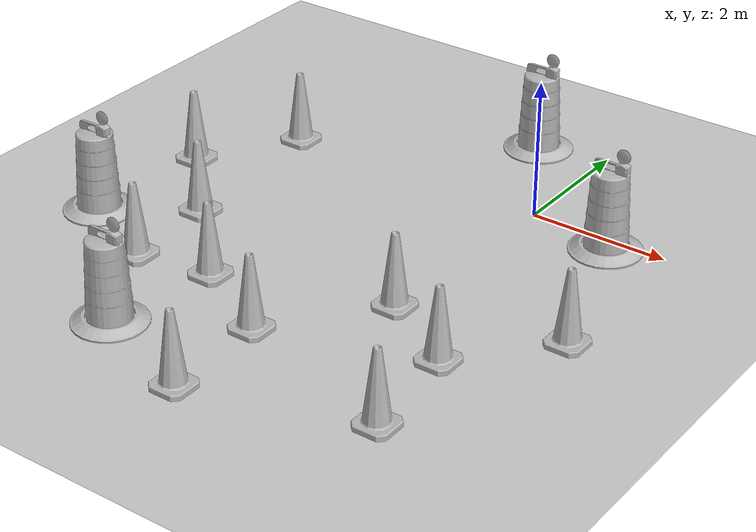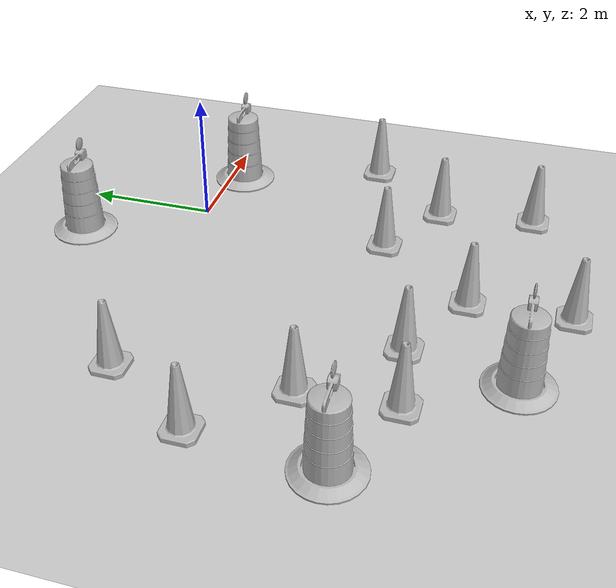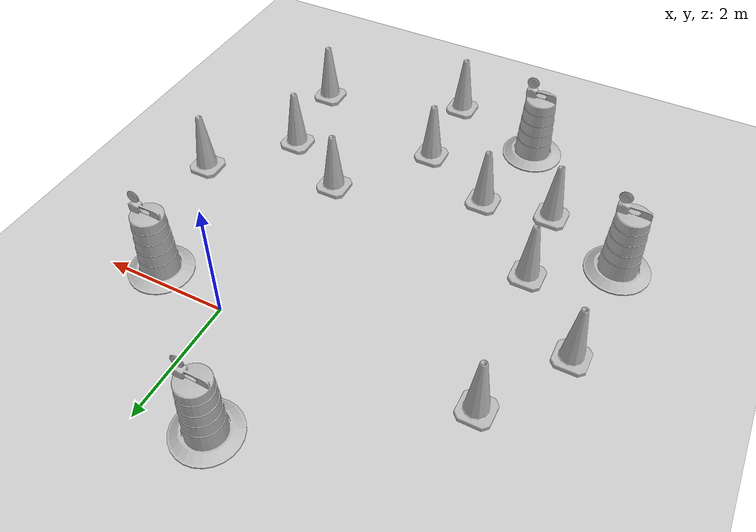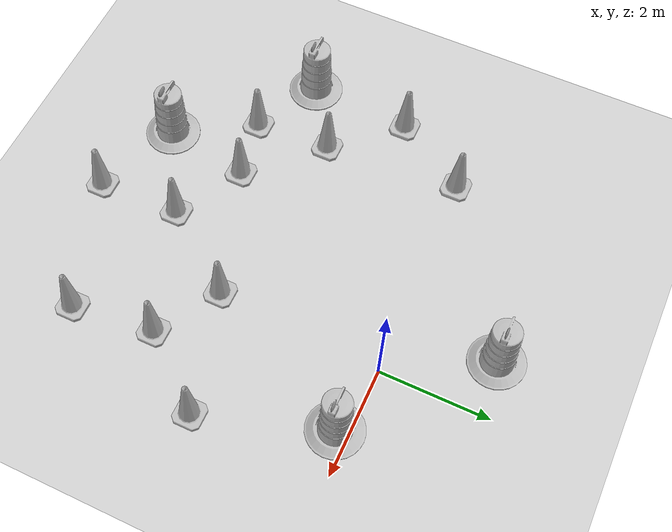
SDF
<sdf version="1.7">
 <world name="default">
  <light name="sun" type="directional">
   <pose>0 0 10 0 -0 0</pose>
   <diffuse>0.8 0.8 0.8 1</diffuse>
   <specular>0.2 0.2 0.2 1</specular>
   <attenuation>
    <range>1000</range>
    <constant>0.9</constant>
    <linear>0.01</linear>
    <quadratic>0.001</quadratic>
   </attenuation>
   <direction>-0.5 0.1 -0.9</direction>
   <spot><inner_angle>0</inner_angle><outer_angle>0</outer_angle><falloff>0</falloff></spot>
  </light>
  <model name="ground_plane">
   <static>1</static>
   <link name="link">
    <collision name="collision">
     <geometry><plane><normal>0 0 1</normal><size>100 100</size></plane></geometry>
     <surface><friction><ode><mu>100</mu><mu2>50</mu2></ode></friction></surface>
    </collision>
    <visual name="visual">
     <cast_shadows>0</cast_shadows>
     <geometry><plane><normal>0 0 1</normal><size>100 100</size></plane></geometry>
     <material>
      <script><uri>file://media/materials/scripts/gazebo.material</uri><name>Gazebo/Grey</name></script>
     </material>
    </visual>
   </link>
  </model>
  <gravity>0 0 -9.8</gravity>
  <magnetic_field>6e-06 2.3e-05 -4.2e-05</magnetic_field>
  <atmosphere type="adiabatic"/>
  <physics type="ode">
   <max_step_size>0.001</max_step_size>
   <real_time_factor>1</real_time_factor>
   <real_time_update_rate>1000</real_time_update_rate>
  </physics>
  <scene><ambient>0.4 0.4 0.4 1</ambient><background>0.7 0.7 0.7 1</background><shadows>1</shadows></scene>
  <audio><device>default</device></audio>
  <spherical_coordinates>
   <surface_model>EARTH_WGS84</surface_model>
   <latitude_deg>0</latitude_deg>
   <longitude_deg>0</longitude_deg>
   <elevation>0</elevation>
   <heading_deg>0</heading_deg>
  </spherical_coordinates>
  <model name="Construction Barrel_clone_9">
   <link name="link">
    <inertial>
     <pose>0 0 0.4 0 -0 0</pose>
     <mass>500</mass>
     <inertia><ixx>51.2096</ixx><iyy>51.2096</iyy><izz>25</izz><ixy>0</ixy><ixz>0</ixz><iyz>0</iyz></inertia>
    </inertial>
    <collision name="collision">
     <geometry><mesh><uri>model://construction_barrel/meshes/construction_barrel.dae</uri></mesh></geometry>
    </collision>
    <visual name="visual">
     <geometry><mesh><uri>model://construction_barrel/meshes/construction_barrel.dae</uri></mesh></geometry>
    </visual>
   </link>
   <pose>-1.00523 1.72622 -1e-06 3e-06 -0 -4.2e-05</pose>
  </model>
  <model name="Construction Cone">
   <link name="link">
    <collision name="collision">
     <geometry>
      <mesh><scale>10 10 10</scale><uri>model://construction_cone/meshes/construction_cone.dae</uri></mesh>
     </geometry>
    </collision>
    <visual name="visual">
     <geometry>
      <mesh><scale>10 10 10</scale><uri>model://construction_cone/meshes/construction_cone.dae</uri></mesh>
     </geometry>
    </visual>
    <inertial>
     <inertia><ixx>1</ixx><ixy>0</ixy><ixz>0</ixz><iyy>1</iyy><iyz>0</iyz><izz>1</izz></inertia>
     <mass>1</mass>
    </inertial>
   </link>
   <pose>1.12809 -5.24035 -0 -0 -0 -0</pose>
  </model>
  <model name="Construction Cone_0">
   <link name="link">
    <collision name="collision">
     <geometry>
      <mesh><scale>10 10 10</scale><uri>model://construction_cone/meshes/construction_cone.dae</uri></mesh>
     </geometry>
    </collision>
    <visual name="visual">
     <geometry>
      <mesh><scale>10 10 10</scale><uri>model://construction_cone/meshes/construction_cone.dae</uri></mesh>
     </geometry>
    </visual>
    <inertial>
     <inertia><ixx>1</ixx><ixy>0</ixy><ixz>0</ixz><iyy>1</iyy><iyz>0</iyz><izz>1</izz></inertia>
     <mass>1</mass>
    </inertial>
   </link>
   <pose>0.954529 -3.74635 -0 0 -1e-06 0</pose>
  </model>
  <model name="Construction Barrel_clone_9_clone">
   <link name="link">
    <inertial>
     <pose>0 0 0.4 0 -0 0</pose>
     <mass>500</mass>
     <inertia><ixx>51.2096</ixx><iyy>51.2096</iyy><izz>25</izz><ixy>0</ixy><ixz>0</ixz><iyz>0</iyz></inertia>
    </inertial>
    <collision name="collision">
     <geometry><mesh><uri>model://construction_barrel/meshes/construction_barrel.dae</uri></mesh></geometry>
    </collision>
    <visual name="visual">
     <geometry><mesh><uri>model://construction_barrel/meshes/construction_barrel.dae</uri></mesh></geometry>
    </visual>
   </link>
   <pose>1.24649 -0.233049 0 1e-06 1e-06 -5.1e-05</pose>
  </model>
  <model name="Construction Barrel_clone_9_clone_1">
   <link name="link">
    <inertial>
     <pose>0 0 0.4 0 -0 0</pose>
     <mass>500</mass>
     <inertia><ixx>51.2096</ixx><iyy>51.2096</iyy><izz>25</izz><ixy>0</ixy><ixz>0</ixz><iyz>0</iyz></inertia>
    </inertial>
    <collision name="collision">
     <geometry><mesh><uri>model://construction_barrel/meshes/construction_barrel.dae</uri></mesh></geometry>
    </collision>
    <visual name="visual">
     <geometry><mesh><uri>model://construction_barrel/meshes/construction_barrel.dae</uri></mesh></geometry>
    </visual>
   </link>
   <pose>-4.92819 -3.40474 -1e-06 3e-06 -0 -3.8e-05</pose>
  </model>
  <model name="Construction Cone_0_clone_clone">
   <link name="link">
    <collision name="collision">
     <geometry>
      <mesh><scale>10 10 10</scale><uri>model://construction_cone/meshes/construction_cone.dae</uri></mesh>
     </geometry>
    </collision>
    <visual name="visual">
     <geometry>
      <mesh><scale>10 10 10</scale><uri>model://construction_cone/meshes/construction_cone.dae</uri></mesh>
     </geometry>
    </visual>
    <inertial>
     <inertia><ixx>1</ixx><ixy>0</ixy><ixz>0</ixz><iyy>1</iyy><iyz>0</iyz><izz>1</izz></inertia>
     <mass>1</mass>
    </inertial>
   </link>
   <pose>-3.95228 -0.141994 -0 0 -0 0</pose>
  </model>
  <model name="Construction Cone_0_clone_clone_0">
   <link name="link">
    <collision name="collision">
     <geometry>
      <mesh><scale>10 10 10</scale><uri>model://construction_cone/meshes/construction_cone.dae</uri></mesh>
     </geometry>
    </collision>
    <visual name="visual">
     <geometry>
      <mesh><scale>10 10 10</scale><uri>model://construction_cone/meshes/construction_cone.dae</uri></mesh>
     </geometry>
    </visual>
    <inertial>
     <inertia><ixx>1</ixx><ixy>0</ixy><ixz>0</ixz><iyy>1</iyy><iyz>0</iyz><izz>1</izz></inertia>
     <mass>1</mass>
    </inertial>
   </link>
   <pose>-4.8056 -1.50412 0 -0 -0 -0</pose>
  </model>
  <model name="Construction Cone_0_clone_clone_1">
   <link name="link">
    <collision name="collision">
     <geometry>
      <mesh><scale>10 10 10</scale><uri>model://construction_cone/meshes/construction_cone.dae</uri></mesh>
     </geometry>
    </collision>
    <visual name="visual">
     <geometry>
      <mesh><scale>10 10 10</scale><uri>model://construction_cone/meshes/construction_cone.dae</uri></mesh>
     </geometry>
    </visual>
    <inertial>
     <inertia><ixx>1</ixx><ixy>0</ixy><ixz>0</ixz><iyy>1</iyy><iyz>0</iyz><izz>1</izz></inertia>
     <mass>1</mass>
    </inertial>
   </link>
   <pose>-2.55868 -3.84123 -0 0 -0 0</pose>
  </model>
  <model name="Construction Cone_0_clone_clone_2">
   <link name="link">
    <collision name="collision">
     <geometry>
      <mesh><scale>10 10 10</scale><uri>model://construction_cone/meshes/construction_cone.dae</uri></mesh>
     </geometry>
    </collision>
    <visual name="visual">
     <geometry>
      <mesh><scale>10 10 10</scale><uri>model://construction_cone/meshes/construction_cone.dae</uri></mesh>
     </geometry>
    </visual>
    <inertial>
     <inertia><ixx>1</ixx><ixy>0</ixy><ixz>0</ixz><iyy>1</iyy><iyz>0</iyz><izz>1</izz></inertia>
     <mass>1</mass>
    </inertial>
   </link>
   <pose>-3.67504 -4.02766 -0 0 -0 0</pose>
  </model>
  <model name="Construction Cone_0_clone_clone_3">
   <link name="link">
    <collision name="collision">
     <geometry>
      <mesh><scale>10 10 10</scale><uri>model://construction_cone/meshes/construction_cone.dae</uri></mesh>
     </geometry>
    </collision>
    <visual name="visual">
     <geometry>
      <mesh><scale>10 10 10</scale><uri>model://construction_cone/meshes/construction_cone.dae</uri></mesh>
     </geometry>
    </visual>
    <inertial>
     <inertia><ixx>1</ixx><ixy>0</ixy><ixz>0</ixz><iyy>1</iyy><iyz>0</iyz><izz>1</izz></inertia>
     <mass>1</mass>
    </inertial>
   </link>
   <pose>-3.75773 -2.64054 -0 0 -0 0</pose>
  </model>
  <model name="Construction Cone_0_clone_clone_4">
   <link name="link">
    <collision name="collision">
     <geometry>
      <mesh><scale>10 10 10</scale><uri>model://construction_cone/meshes/construction_cone.dae</uri></mesh>
     </geometry>
    </collision>
    <visual name="visual">
     <geometry>
      <mesh><scale>10 10 10</scale><uri>model://construction_cone/meshes/construction_cone.dae</uri></mesh>
     </geometry>
    </visual>
    <inertial>
     <inertia><ixx>1</ixx><ixy>0</ixy><ixz>0</ixz><iyy>1</iyy><iyz>0</iyz><izz>1</izz></inertia>
     <mass>1</mass>
    </inertial>
   </link>
   <pose>-0.183653 -3.05375 -1e-06 3e-06 -0 0</pose>
  </model>
  <model name="Construction Cone_0_clone_clone_5">
   <link name="link">
    <collision name="collision">
     <geometry>
      <mesh><scale>10 10 10</scale><uri>model://construction_cone/meshes/construction_cone.dae</uri></mesh>
     </geometry>
    </collision>
    <visual name="visual">
     <geometry>
      <mesh><scale>10 10 10</scale><uri>model://construction_cone/meshes/construction_cone.dae</uri></mesh>
     </geometry>
    </visual>
    <inertial>
     <inertia><ixx>1</ixx><ixy>0</ixy><ixz>0</ixz><iyy>1</iyy><iyz>0</iyz><izz>1</izz></inertia>
     <mass>1</mass>
    </inertial>
   </link>
   <pose>2.01183 -2.49312 -0 0 -1e-06 0</pose>
  </model>
  <model name="Construction Barrel_clone_9_clone_1_clone">
   <link name="link">
    <inertial>
     <pose>0 0 0.4 0 -0 0</pose>
     <mass>500</mass>
     <inertia><ixx>51.2096</ixx><iyy>51.2096</iyy><izz>25</izz><ixy>0</ixy><ixz>0</ixz><iyz>0</iyz></inertia>
    </inertial>
    <collision name="collision">
     <geometry><mesh><uri>model://construction_barrel/meshes/construction_barrel.dae</uri></mesh></geometry>
    </collision>
    <visual name="visual">
     <geometry><mesh><uri>model://construction_barrel/meshes/construction_barrel.dae</uri></mesh></geometry>
    </visual>
   </link>
   <pose>-2.85432 -5.41965 -1e-06 3e-06 7e-06 -4.3e-05</pose>
  </model>
  <model name="Construction Cone_0_clone_clone_4_clone">
   <link name="link">
    <collision name="collision">
     <geometry>
      <mesh><scale>10 10 10</scale><uri>model://construction_cone/meshes/construction_cone.dae</uri></mesh>
     </geometry>
    </collision>
    <visual name="visual">
     <geometry>
      <mesh><scale>10 10 10</scale><uri>model://construction_cone/meshes/construction_cone.dae</uri></mesh>
     </geometry>
    </visual>
    <inertial>
     <inertia><ixx>1</ixx><ixy>0</ixy><ixz>0</ixz><iyy>1</iyy><iyz>0</iyz><izz>1</izz></inertia>
     <mass>1</mass>
    </inertial>
   </link>
   <pose>-1.31266 -4.52438 -0 0 -0 0</pose>
  </model>
  <model name="Construction Cone_0_clone_clone_4_clone_clone">
   <link name="link">
    <collision name="collision">
     <geometry>
      <mesh><scale>10 10 10</scale><uri>model://construction_cone/meshes/construction_cone.dae</uri></mesh>
     </geometry>
    </collision>
    <visual name="visual">
     <geometry>
      <mesh><scale>10 10 10</scale><uri>model://construction_cone/meshes/construction_cone.dae</uri></mesh>
     </geometry>
    </visual>
    <inertial>
     <inertia><ixx>1</ixx><ixy>0</ixy><ixz>0</ixz><iyy>1</iyy><iyz>0</iyz><izz>1</izz></inertia>
     <mass>1</mass>
    </inertial>
   </link>
   <pose>-1.26596 -6.02927 -0 0 -1e-06 0</pose>
  </model>
 </world>
</sdf>
